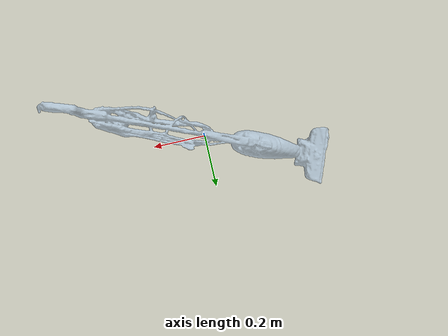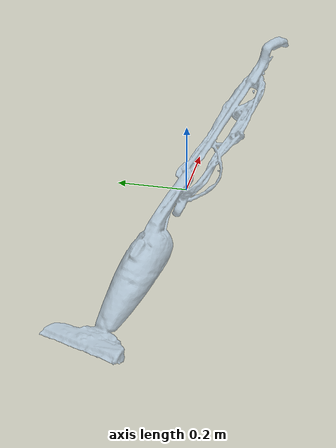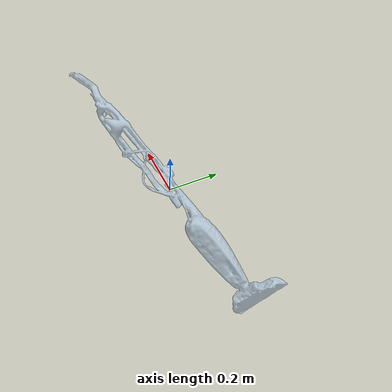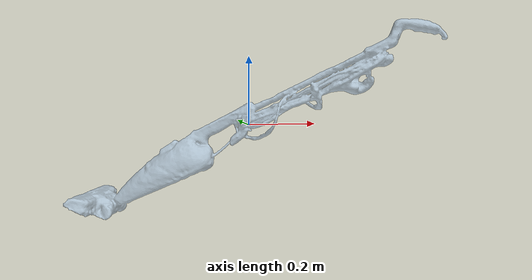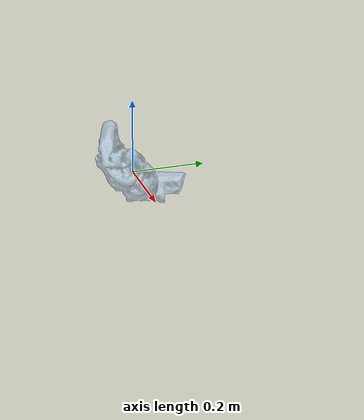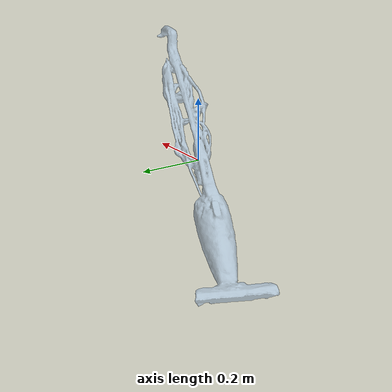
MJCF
<mujoco model="vacuum">
    <compiler meshdir="./"/>

    <default>
        <geom friction="0.9 0.5 0.5" rgba="0.7 0.8 0.9 0.7"/>
        <joint damping="0.5"/>
    </default>

    <asset>
        <mesh name="vacuum_mesh" file="vacuum.obj" scale="1 1 1"/>
    </asset>

    <worldbody>
        <body name="vacuum_link">
            <inertial pos="0 0 0" mass="0.1" diaginertia="0.002 0.002 0.002"/>
            <geom name="vacuum" type="mesh" mesh="vacuum_mesh"
                  pos="0 0 0" quat="1 0 0 0"
                  rgba="0.7 0.8 0.9 0.7"
                  friction="0.9 0.5 0.5"
                  solref="0.02 1"
                  solimp="0.9 0.95 0.001"/>
        </body>
    </worldbody>
</mujoco>
